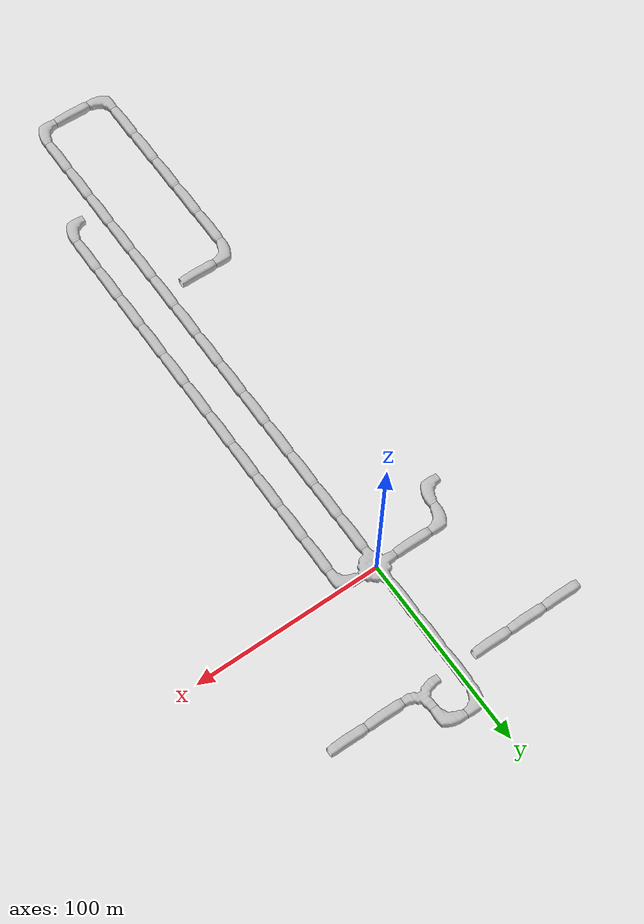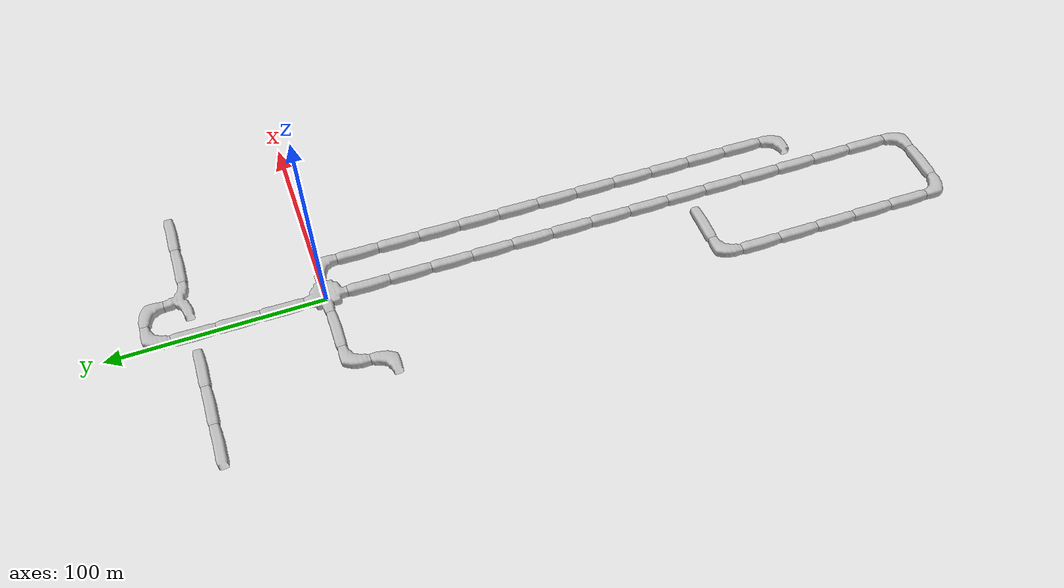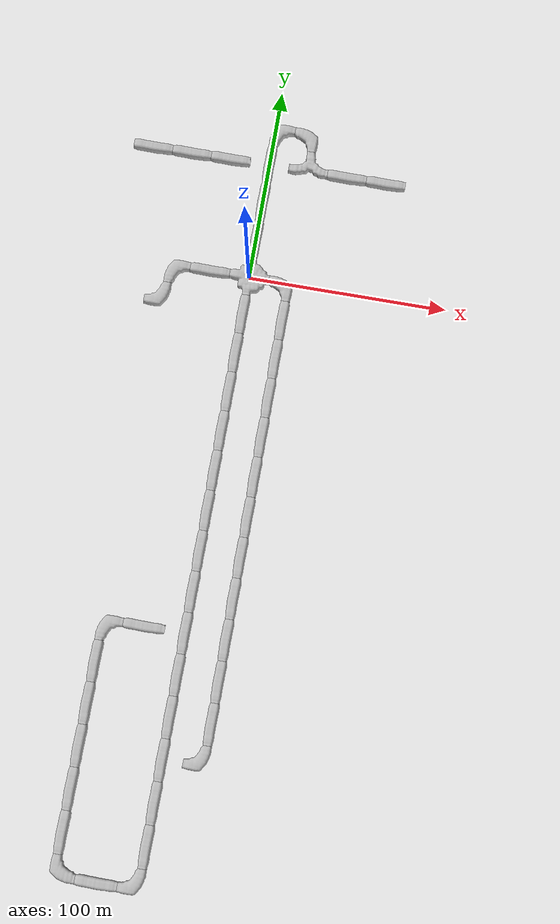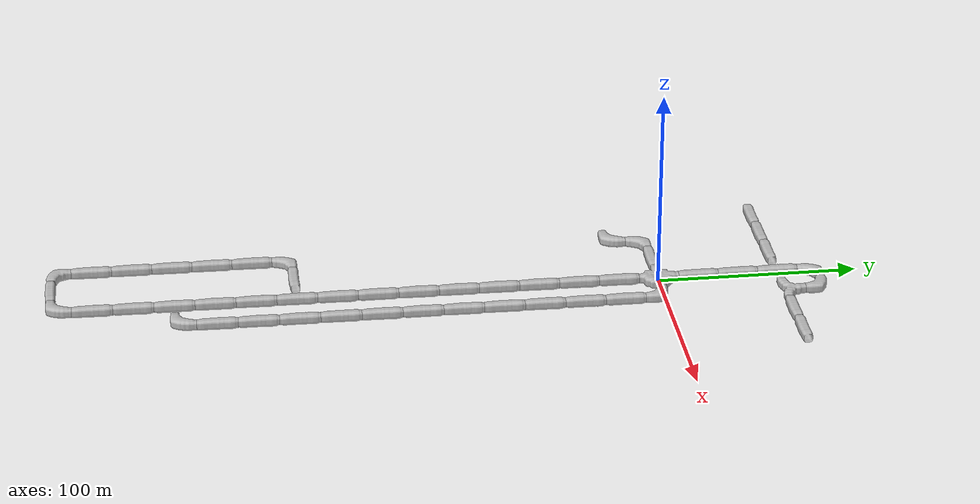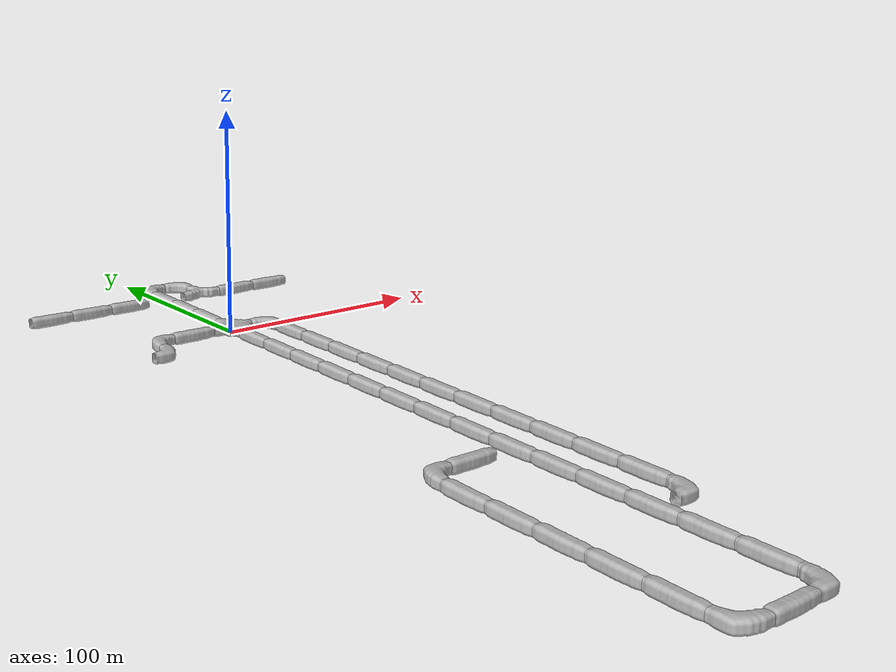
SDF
<sdf version="1.6">
 <world name="cave_8000">
  <include>
   <static>true</static>
   <name>cave_0_0</name>
   <pose>0 0 0 0 0 -1.5707963267948966</pose>
   <uri>model://cave_4way_20m</uri>
  </include>
  <include>
   <static>true</static>
   <name>cave_1_0</name>
   <pose>20 0 0 0 0 3.141592653589793</pose>
   <uri>model://cave_L_20m</uri>
  </include>
  <include>
   <static>true</static>
   <name>cave_1_-1</name>
   <pose>20 -20 0 0 0 0.0</pose>
   <uri>model://cave_straight_20m</uri>
  </include>
  <include>
   <static>true</static>
   <name>cave_1_-2</name>
   <pose>20 -40 0 0 0 0.0</pose>
   <uri>model://cave_straight_20m</uri>
  </include>
  <include>
   <static>true</static>
   <name>cave_1_-3</name>
   <pose>20 -60 0 0 0 0.0</pose>
   <uri>model://cave_straight_20m</uri>
  </include>
  <include>
   <static>true</static>
   <name>cave_1_-4</name>
   <pose>20 -80 0 0 0 0.0</pose>
   <uri>model://cave_straight_20m</uri>
  </include>
  <include>
   <static>true</static>
   <name>cave_1_-5</name>
   <pose>20 -100 0 0 0 0.0</pose>
   <uri>model://cave_straight_20m</uri>
  </include>
  <include>
   <static>true</static>
   <name>cave_1_-6</name>
   <pose>20 -120 0 0 0 0.0</pose>
   <uri>model://cave_straight_20m</uri>
  </include>
  <include>
   <static>true</static>
   <name>cave_1_-7</name>
   <pose>20 -140 0 0 0 0.0</pose>
   <uri>model://cave_straight_20m</uri>
  </include>
  <include>
   <static>true</static>
   <name>cave_1_-8</name>
   <pose>20 -160 0 0 0 0.0</pose>
   <uri>model://cave_straight_20m</uri>
  </include>
  <include>
   <static>true</static>
   <name>cave_1_-9</name>
   <pose>20 -180 0 0 0 0.0</pose>
   <uri>model://cave_straight_20m</uri>
  </include>
  <include>
   <static>true</static>
   <name>cave_1_-10</name>
   <pose>20 -200 0 0 0 0.0</pose>
   <uri>model://cave_straight_20m</uri>
  </include>
  <include>
   <static>true</static>
   <name>cave_1_-11</name>
   <pose>20 -220 0 0 0 0.0</pose>
   <uri>model://cave_straight_20m</uri>
  </include>
  <include>
   <static>true</static>
   <name>cave_1_-12</name>
   <pose>20 -240 0 0 0 1.5707963267948966</pose>
   <uri>model://cave_L_20m</uri>
  </include>
  <include>
   <static>true</static>
   <name>cave_0_-1</name>
   <pose>0 -20 0 0 0 0.0</pose>
   <uri>model://cave_straight_20m</uri>
  </include>
  <include>
   <static>true</static>
   <name>cave_0_-2</name>
   <pose>0 -40 0 0 0 0.0</pose>
   <uri>model://cave_straight_20m</uri>
  </include>
  <include>
   <static>true</static>
   <name>cave_0_-3</name>
   <pose>0 -60 0 0 0 0.0</pose>
   <uri>model://cave_straight_20m</uri>
  </include>
  <include>
   <static>true</static>
   <name>cave_0_-4</name>
   <pose>0 -80 0 0 0 0.0</pose>
   <uri>model://cave_straight_20m</uri>
  </include>
  <include>
   <static>true</static>
   <name>cave_0_-5</name>
   <pose>0 -100 0 0 0 0.0</pose>
   <uri>model://cave_straight_20m</uri>
  </include>
  <include>
   <static>true</static>
   <name>cave_0_-6</name>
   <pose>0 -120 0 0 0 0.0</pose>
   <uri>model://cave_straight_20m</uri>
  </include>
  <include>
   <static>true</static>
   <name>cave_0_-7</name>
   <pose>0 -140 0 0 0 0.0</pose>
   <uri>model://cave_straight_20m</uri>
  </include>
  <include>
   <static>true</static>
   <name>cave_0_-8</name>
   <pose>0 -160 0 0 0 0.0</pose>
   <uri>model://cave_straight_20m</uri>
  </include>
  <include>
   <static>true</static>
   <name>cave_0_-9</name>
   <pose>0 -180 0 0 0 0.0</pose>
   <uri>model://cave_straight_20m</uri>
  </include>
  <include>
   <static>true</static>
   <name>cave_0_-10</name>
   <pose>0 -200 0 0 0 0.0</pose>
   <uri>model://cave_straight_20m</uri>
  </include>
  <include>
   <static>true</static>
   <name>cave_0_-11</name>
   <pose>0 -220 0 0 0 0.0</pose>
   <uri>model://cave_straight_20m</uri>
  </include>
  <include>
   <static>true</static>
   <name>cave_0_-12</name>
   <pose>0 -240 0 0 0 0.0</pose>
   <uri>model://cave_straight_20m</uri>
  </include>
  <include>
   <static>true</static>
   <name>cave_0_-13</name>
   <pose>0 -260 0 0 0 0.0</pose>
   <uri>model://cave_straight_20m</uri>
  </include>
  <include>
   <static>true</static>
   <name>cave_0_-14</name>
   <pose>0 -280 0 0 0 0.0</pose>
   <uri>model://cave_straight_20m</uri>
  </include>
  <include>
   <static>true</static>
   <name>cave_0_-15</name>
   <pose>0 -300 0 0 0 1.5707963267948966</pose>
   <uri>model://cave_L_20m</uri>
  </include>
  <include>
   <static>true</static>
   <name>cave_-1_-15</name>
   <pose>-20 -300 0 0 0 1.5707963267948966</pose>
   <uri>model://cave_straight_20m</uri>
  </include>
  <include>
   <static>true</static>
   <name>cave_-2_-15</name>
   <pose>-40 -300 0 0 0 0.0</pose>
   <uri>model://cave_L_20m</uri>
  </include>
  <include>
   <static>true</static>
   <name>cave_-2_-14</name>
   <pose>-40 -280 0 0 0 0.0</pose>
   <uri>model://cave_straight_20m</uri>
  </include>
  <include>
   <static>true</static>
   <name>cave_-2_-13</name>
   <pose>-40 -260 0 0 0 0.0</pose>
   <uri>model://cave_straight_20m</uri>
  </include>
  <include>
   <static>true</static>
   <name>cave_-2_-12</name>
   <pose>-40 -240 0 0 0 0.0</pose>
   <uri>model://cave_straight_20m</uri>
  </include>
  <include>
   <static>true</static>
   <name>cave_-2_-11</name>
   <pose>-40 -220 0 0 0 0.0</pose>
   <uri>model://cave_straight_20m</uri>
  </include>
  <include>
   <static>true</static>
   <name>cave_-2_-10</name>
   <pose>-40 -200 0 0 0 0.0</pose>
   <uri>model://cave_straight_20m</uri>
  </include>
  <include>
   <static>true</static>
   <name>cave_-2_-9</name>
   <pose>-40 -180 0 0 0 -1.5707963267948966</pose>
   <uri>model://cave_L_20m</uri>
  </include>
  <include>
   <static>true</static>
   <name>cave_-1_-9</name>
   <pose>-20 -180 0 0 0 1.5707963267948966</pose>
   <uri>model://cave_straight_20m</uri>
  </include>
  <include>
   <static>true</static>
   <name>cave_-1_0</name>
   <pose>-20 0 0 0 0 1.5707963267948966</pose>
   <uri>model://cave_straight_20m</uri>
  </include>
  <include>
   <static>true</static>
   <name>cave_-2_0</name>
   <pose>-40 0 0 0 0 -1.5707963267948966</pose>
   <uri>model://cave_L_20m</uri>
  </include>
  <include>
   <static>true</static>
   <name>cave_-2_-1</name>
   <pose>-40 -20 0 0 0 1.5707963267948966</pose>
   <uri>model://cave_L_20m</uri>
  </include>
  <include>
   <static>true</static>
   <name>cave_-3_3</name>
   <pose>-60 60 0 0 0 1.5707963267948966</pose>
   <uri>model://cave_straight_20m</uri>
  </include>
  <include>
   <static>true</static>
   <name>cave_-2_3</name>
   <pose>-40 60 0 0 0 1.5707963267948966</pose>
   <uri>model://cave_straight_20m</uri>
  </include>
  <include>
   <static>true</static>
   <name>cave_-1_3</name>
   <pose>-20 60 0 0 0 1.5707963267948966</pose>
   <uri>model://cave_straight_20m</uri>
  </include>
  <include>
   <static>true</static>
   <name>cave_0_1</name>
   <pose>0 20 0 0 0 0.0</pose>
   <uri>model://cave_straight_20m</uri>
  </include>
  <include>
   <static>true</static>
   <name>cave_0_2</name>
   <pose>0 40 0 0 0 0.0</pose>
   <uri>model://cave_straight_20m</uri>
  </include>
  <include>
   <static>true</static>
   <name>cave_0_3</name>
   <pose>0 60 0 0 0 0.0</pose>
   <uri>model://cave_straight_20m</uri>
  </include>
  <include>
   <static>true</static>
   <name>cave_0_4</name>
   <pose>0 80 0 0 0 -1.5707963267948966</pose>
   <uri>model://cave_L_20m</uri>
  </include>
  <include>
   <static>true</static>
   <name>cave_1_4</name>
   <pose>20 80 0 0 0 3.141592653589793</pose>
   <uri>model://cave_L_20m</uri>
  </include>
  <include>
   <static>true</static>
   <name>cave_1_3</name>
   <pose>20 60 0 0 0 0.0</pose>
   <uri>model://cave_3way_20m</uri>
  </include>
  <include>
   <static>true</static>
   <name>cave_2_3</name>
   <pose>40 60 0 0 0 1.5707963267948966</pose>
   <uri>model://cave_straight_20m</uri>
  </include>
  <include>
   <static>true</static>
   <name>cave_3_3</name>
   <pose>60 60 0 0 0 1.5707963267948966</pose>
   <uri>model://cave_straight_20m</uri>
  </include>
 </world>
</sdf>
